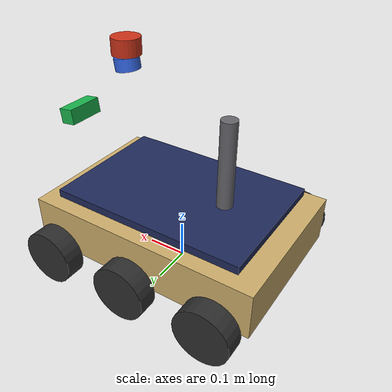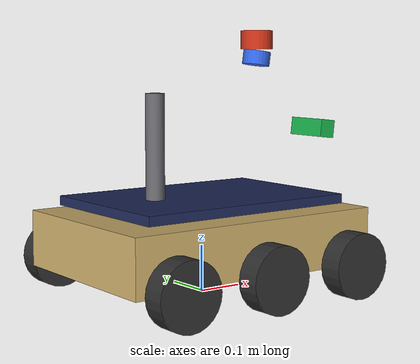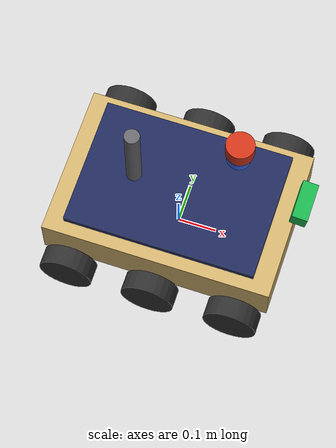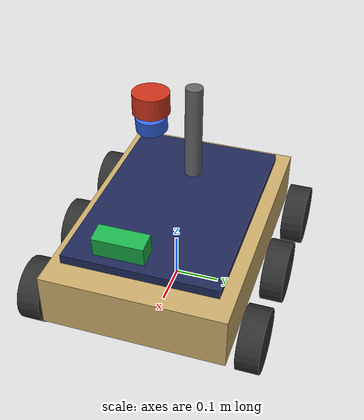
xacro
<?xml version="1.0"?>
<robot xmlns:xacro="http://www.ros.org/wiki/xacro" name="rover">

  <!-- Single source of truth for the numbers shared with model.sdf. -->
  <xacro:property name="wheel_radius"     value="0.07"/>
  <xacro:property name="wheel_width"      value="0.05"/>
  <xacro:property name="wheel_separation" value="0.48"/>
  <xacro:property name="wheel_x"          value="0.22"/>
  <xacro:property name="base_length"      value="0.6"/>
  <xacro:property name="base_width"       value="0.4"/>
  <xacro:property name="base_height"      value="0.12"/>

  <material name="rover_body"> <color rgba="0.80 0.68 0.42 1"/></material>
  <material name="deck">       <color rgba="0.12 0.16 0.35 1"/></material>
  <material name="dark">       <color rgba="0.18 0.18 0.18 1"/></material>
  <material name="mast">       <color rgba="0.40 0.40 0.42 1"/></material>
  <material name="red">        <color rgba="0.8 0.2 0.1 1"/></material>
  <material name="green">      <color rgba="0.1 0.7 0.3 1"/></material>

  <!-- base_footprint sits on the ground directly under base_link. Nav2
       and most navigation tooling expect this frame to exist. -->
  <link name="base_footprint"/>

  <link name="base_link">
    <visual>
      <geometry><box size="${base_length} ${base_width} ${base_height}"/></geometry>
      <material name="rover_body"/>
    </visual>
    <visual>
      <origin xyz="0 0 0.08" rpy="0 0 0"/>
      <geometry><box size="0.5 0.34 0.02"/></geometry>
      <material name="deck"/>
    </visual>
    <collision>
      <geometry><box size="${base_length} ${base_width} ${base_height}"/></geometry>
    </collision>
    <inertial>
      <mass value="8.0"/>
      <inertia ixx="0.1163" ixy="0" ixz="0" iyy="0.2496" iyz="0" izz="0.3067"/>
    </inertial>
  </link>

  <joint name="base_footprint_joint" type="fixed">
    <parent link="base_footprint"/>
    <child  link="base_link"/>
    <origin xyz="0 0 0.12" rpy="0 0 0"/>
  </joint>

  <!-- One macro for all six wheels. x/y are the wheel-centre offsets from
       base_link; the driven middle pair uses x = 0. -->
  <xacro:macro name="wheel" params="name x y">
    <link name="${name}">
      <visual>
        <origin xyz="0 0 0" rpy="1.5707 0 0"/>
        <geometry><cylinder radius="${wheel_radius}" length="${wheel_width}"/></geometry>
        <material name="dark"/>
      </visual>
      <collision>
        <origin xyz="0 0 0" rpy="1.5707 0 0"/>
        <geometry><cylinder radius="${wheel_radius}" length="${wheel_width}"/></geometry>
      </collision>
      <inertial>
        <mass value="0.6"/>
        <inertia ixx="0.00098" ixy="0" ixz="0" iyy="0.00098" iyz="0" izz="0.00147"/>
      </inertial>
    </link>

    <joint name="${name}_joint" type="continuous">
      <parent link="base_link"/>
      <child  link="${name}"/>
      <origin xyz="${x} ${y} -0.05" rpy="0 0 0"/>
      <axis xyz="0 1 0"/>
    </joint>
  </xacro:macro>

  <!-- Driven middle pair (must be named left_wheel / right_wheel to match
       the DiffDrive plugin joints in model.sdf). -->
  <xacro:wheel name="left_wheel"  x="0"          y="${ wheel_separation/2}"/>
  <xacro:wheel name="right_wheel" x="0"          y="${-wheel_separation/2}"/>
  <!-- Free-spinning corners. -->
  <xacro:wheel name="front_left_wheel"  x="${ wheel_x}" y="${ wheel_separation/2}"/>
  <xacro:wheel name="front_right_wheel" x="${ wheel_x}" y="${-wheel_separation/2}"/>
  <xacro:wheel name="rear_left_wheel"   x="${-wheel_x}" y="${ wheel_separation/2}"/>
  <xacro:wheel name="rear_right_wheel"  x="${-wheel_x}" y="${-wheel_separation/2}"/>

  <!-- Sensor mast: a vertical post carrying the camera up high. -->
  <link name="mast_link">
    <visual>
      <geometry><cylinder radius="0.02" length="0.26"/></geometry>
      <material name="mast"/>
    </visual>
    <inertial>
      <mass value="0.2"/>
      <inertia ixx="0.0011" ixy="0" ixz="0" iyy="0.0011" iyz="0" izz="2e-5"/>
    </inertial>
  </link>
  <joint name="mast_joint" type="fixed">
    <parent link="base_link"/>
    <child  link="mast_link"/>
    <origin xyz="-0.12 0 0.18" rpy="0 0 0"/>
  </joint>

  <!-- Sensor frames. Positions match model.sdf. -->
  <link name="lidar_link">
    <visual>
      <geometry><cylinder radius="0.035" length="0.04"/></geometry>
      <material name="red"/>
    </visual>
    <inertial>
      <mass value="0.1"/>
      <inertia ixx="4e-5" ixy="0" ixz="0" iyy="4e-5" iyz="0" izz="4e-5"/>
    </inertial>
  </link>
  <!-- 3-D lidar used for terrain visualisation (publishes /points).
       Pose and tilt must match model.sdf. -->
  <link name="lidar3d_link">
    <visual>
      <geometry><cylinder radius="0.03" length="0.03"/></geometry>
      <material name="blue3d"><color rgba="0.2 0.4 0.9 1"/></material>
    </visual>
    <inertial>
      <mass value="0.1"/>
      <inertia ixx="4e-5" ixy="0" ixz="0" iyy="4e-5" iyz="0" izz="4e-5"/>
    </inertial>
  </link>

  <joint name="lidar3d_joint" type="fixed">
    <parent link="base_link"/>
    <child  link="lidar3d_link"/>
    <origin xyz="0.15 0 0.38" rpy="0 0.15 0"/>
  </joint>

  <joint name="lidar_joint" type="fixed">
    <parent link="base_link"/>
    <child  link="lidar_link"/>
    <origin xyz="0.15 0 0.42" rpy="0 0 0"/>
  </joint>

  <link name="camera_link">
    <visual>
      <geometry><box size="0.04 0.10 0.04"/></geometry>
      <material name="green"/>
    </visual>
    <inertial>
      <mass value="0.1"/>
      <inertia ixx="1e-5" ixy="0" ixz="0" iyy="1e-5" iyz="0" izz="1e-5"/>
    </inertial>
  </link>
  <joint name="camera_joint" type="fixed">
    <parent link="base_link"/>
    <child  link="camera_link"/>
    <origin xyz="0.32 0 0.22" rpy="0 0.12 0"/>
  </joint>

  <link name="imu_link">
    <inertial>
      <mass value="0.05"/>
      <inertia ixx="1e-6" ixy="0" ixz="0" iyy="1e-6" iyz="0" izz="1e-6"/>
    </inertial>
  </link>
  <joint name="imu_joint" type="fixed">
    <parent link="base_link"/>
    <child  link="imu_link"/>
    <origin xyz="0 0 0.06" rpy="0 0 0"/>
  </joint>
</robot>
